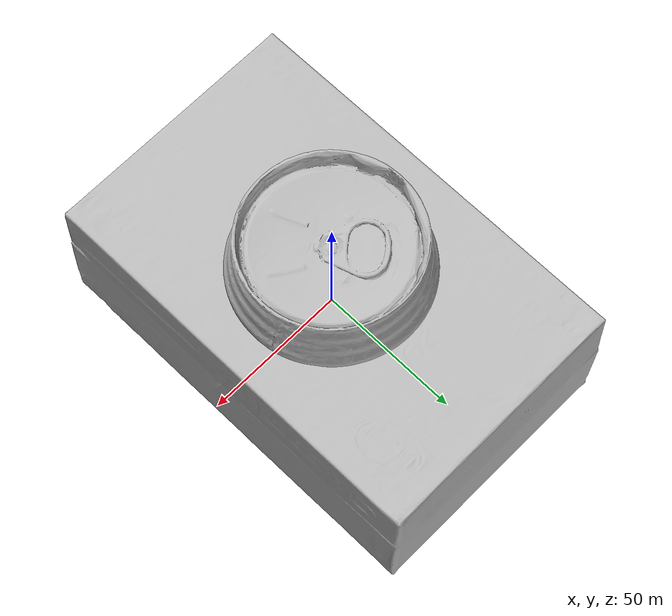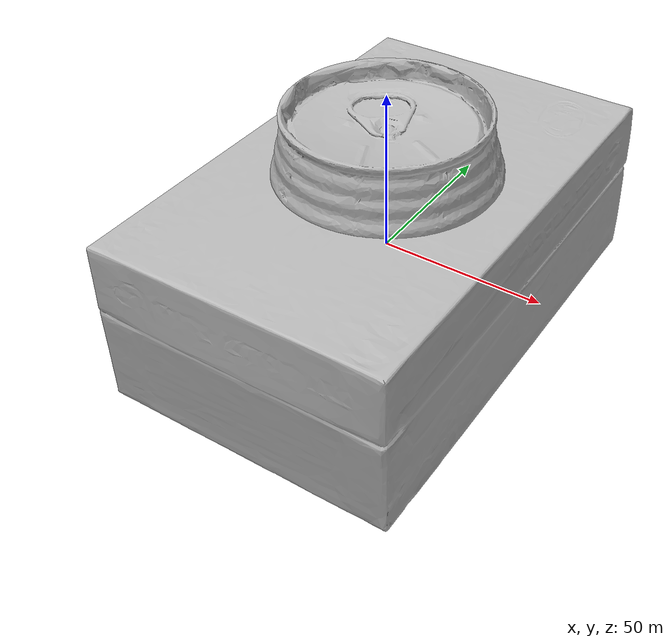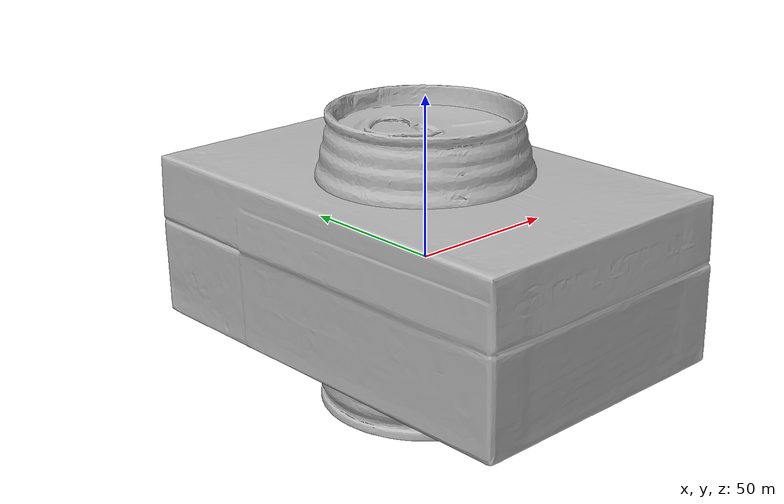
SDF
<sdf version="1.4">
 <world name="default">
  <light name="light1" type="point">
   <pose>0 0 1 0 0 0</pose>
   <diffuse>3 3 3 1</diffuse>
   <specular>3 3 3 1</specular>
  </light>
  <light name="light2" type="point">
   <pose>0 0.5 2 0 0 0</pose>
   <diffuse>1 1 1 1</diffuse>
   <specular>1 1 1 1</specular>
  </light>
  <light name="light3" type="point">
   <pose>0 0.5 2 0 0 0</pose>
   <diffuse>3 3 3 1</diffuse>
   <specular>3 3 3 1</specular>
  </light>
  <scene><ambient>0.7 0.7 0.7</ambient></scene>
  <model name="box1">
   <link name="link_box1">
    <collision name="default">
     <geometry>
      <mesh><uri>model://realsense_box/collision_meshes/collision.obj</uri><scale>1.0 1.0 1.0</scale></mesh>
     </geometry>
     <surface>
      <friction><ode><mu>0.5</mu><mu2>0.5</mu2></ode></friction>
      <contact><ode><max_vel>0</max_vel><min_depth>0.0001</min_depth><kp>1e8</kp></ode></contact>
     </surface>
    </collision>
    <visual name="default">
     <geometry>
      <mesh><uri>model://realsense_box/visual_meshes/visual.dae</uri><scale>1.0 1.0 1.0</scale></mesh>
     </geometry>
    </visual>
    <inertial>
     <mass>0.9783616662025452</mass>
     <pose>4.0744838770478964e-05 8.587493357481435e-05 -2.4153794583980925e-05 -0.00012602841694551038 -0.006358939977979225 0.005012324824875736</pose>
     <inertia>
      <ixx>0.0009306729</ixx>
      <iyy>0.0019425071</iyy>
      <izz>0.002403061</izz>
      <ixy>0</ixy>
      <ixz>0</ixz>
      <iyz>0</iyz>
     </inertia>
    </inertial>
   </link>
   <pose>-0.051035553216934204 0.137852281332016 0.027316007763147354 1.778276303459416e-08 1.186621349522122e-08 -1.575660493114198</pose>
  </model>
  <model name="box2">
   <link name="link_box2">
    <collision name="default">
     <geometry>
      <mesh><uri>model://wooden_puzzle2/collision_meshes/collision.obj</uri><scale>1.0 1.0 1.0</scale></mesh>
     </geometry>
     <surface>
      <friction><ode><mu>0.5</mu><mu2>0.5</mu2></ode></friction>
      <contact><ode><max_vel>0</max_vel><min_depth>0.0001</min_depth><kp>1e8</kp></ode></contact>
     </surface>
    </collision>
    <visual name="default">
     <geometry>
      <mesh><uri>model://wooden_puzzle2/visual_meshes/visual.dae</uri><scale>1.0 1.0 1.0</scale></mesh>
     </geometry>
    </visual>
    <inertial>
     <mass>0.024048319086432457</mass>
     <pose>2.7402536943554878e-05 4.997663199901581e-05 6.587122334167361e-05 -0.19203048535200862 0.6112800928970119 -0.6338660341545117</pose>
     <inertia>
      <ixx>4.470326e-06</ixx>
      <iyy>4.593511e-06</iyy>
      <izz>4.528165e-06</izz>
      <ixy>0</ixy>
      <ixz>0</ixz>
      <iyz>0</iyz>
     </inertia>
    </inertial>
   </link>
   <pose>-0.07959382236003876 -0.18347042798995972 0.01691773347556591 0.020848361982947292 0.0007214622216541571 -2.83928282027494</pose>
  </model>
  <model name="can1">
   <link name="link_can1">
    <collision name="default">
     <geometry>
      <mesh><uri>model://redbull/collision_meshes/collision.obj</uri><scale>1.0 1.0 1.0</scale></mesh>
     </geometry>
     <surface>
      <friction><ode><mu>0.5</mu><mu2>0.5</mu2></ode></friction>
      <contact><ode><max_vel>0</max_vel><min_depth>0.0001</min_depth><kp>1e8</kp></ode></contact>
     </surface>
    </collision>
    <visual name="default">
     <geometry>
      <mesh><uri>model://redbull/visual_meshes/visual.dae</uri><scale>1.0 1.0 1.0</scale></mesh>
     </geometry>
    </visual>
    <inertial>
     <mass>0.19214749336242676</mass>
     <pose>-2.212707477156073e-05 -0.00012659536150749773 -0.0006860988214612007 0.0011364686928787662 -0.01080099531045839 0.5859333437288349</pose>
     <inertia>
      <ixx>0.00018066002</ixx>
      <iyy>0.0001808125</iyy>
      <izz>0.0001072083</izz>
      <ixy>0</ixy>
      <ixz>0</ixz>
      <iyz>0</iyz>
     </inertia>
    </inertial>
   </link>
   <pose>0.12175106257200241 -0.11149705946445465 0.046385616064071655 -0.010489357151086698 0.007260292008043171 -2.016456197340392</pose>
  </model>
  <model name="can2">
   <link name="link_can2">
    <collision name="default">
     <geometry>
      <mesh><uri>model://pepsi/collision_meshes/collision.obj</uri><scale>1.0 1.0 1.0</scale></mesh>
     </geometry>
     <surface>
      <friction><ode><mu>0.5</mu><mu2>0.5</mu2></ode></friction>
      <contact><ode><max_vel>0</max_vel><min_depth>0.0001</min_depth><kp>1e8</kp></ode></contact>
     </surface>
    </collision>
    <visual name="default">
     <geometry><mesh><uri>model://pepsi/visual_meshes/visual.dae</uri><scale>1.0 1.0 1.0</scale></mesh></geometry>
    </visual>
    <inertial>
     <mass>0.3079187572002411</mass>
     <pose>-7.5590331107378e-05 2.9931279641459696e-05 -0.0003384356386959553 -0.0010678548810066889 -0.0021735327588889423 0.5674125845328797</pose>
     <inertia>
      <ixx>0.0006134332</ixx>
      <iyy>0.0006129863</iyy>
      <izz>0.0001305606</izz>
      <ixy>0</ixy>
      <ixz>0</ixz>
      <iyz>0</iyz>
     </inertia>
    </inertial>
   </link>
   <pose>0.033359821885824203 0.13224229216575623 0.074496328830719 -1.9635987702418776e-05 2.0178480665600917e-06 -0.3889650407521388</pose>
  </model>
  <physics type="ode">
   <max_contacts>50</max_contacts>
   <ode>
    <solver><type>quick</type><iters>75</iters></solver>
    <constraints>
     <contact_max_correcting_vel>0</contact_max_correcting_vel>
     <contact_surface_layer>0</contact_surface_layer>
    </constraints>
   </ode>
  </physics>
 </world>
</sdf>
